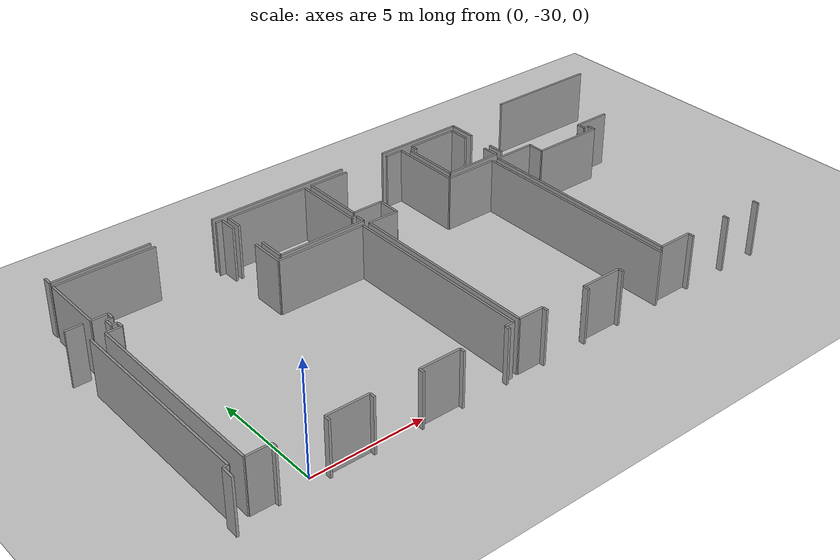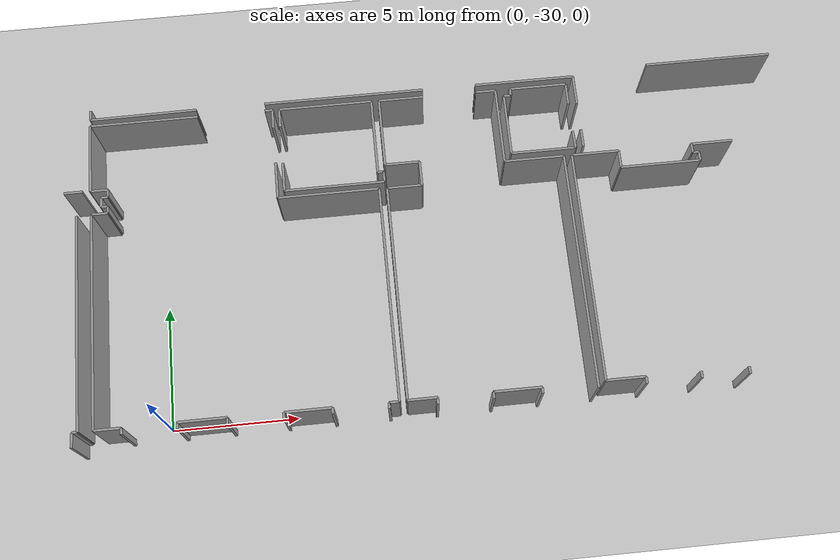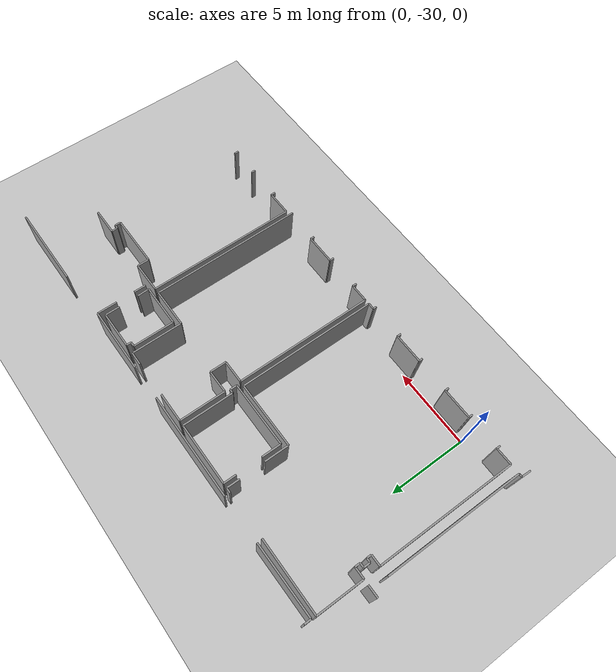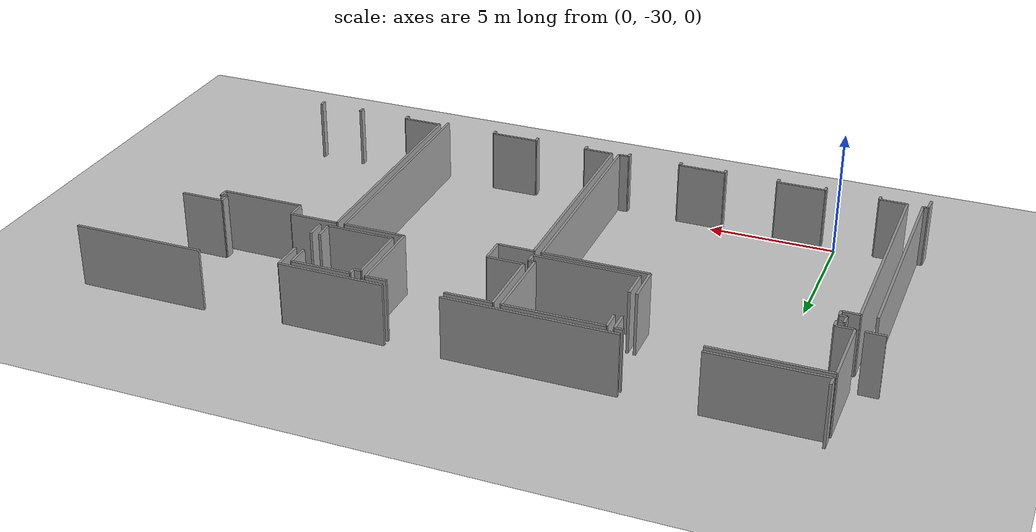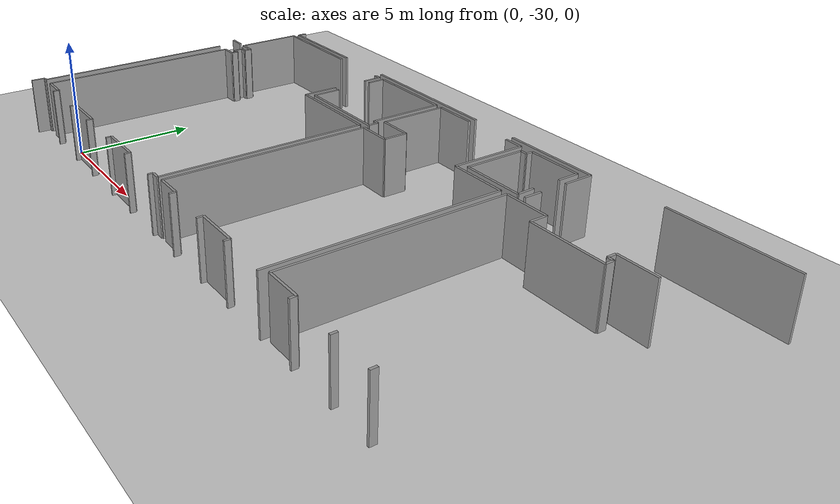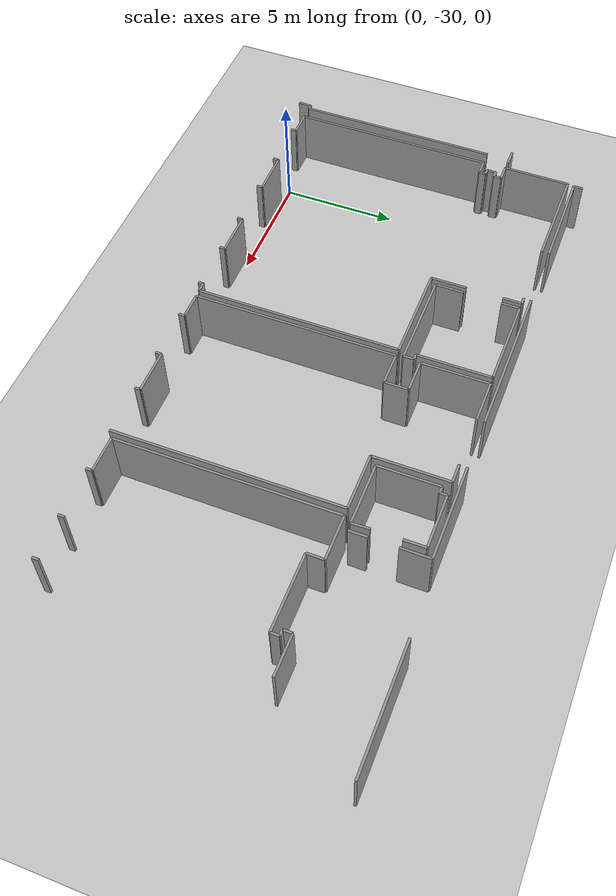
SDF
<sdf version="1.6">
 <world name="default">
  <model name="ground_plane">
   <static>1</static>
   <link name="link">
    <collision name="collision">
     <geometry><plane><normal>0 0 1</normal><size>100 100</size></plane></geometry>
     <surface><friction><ode><mu>100</mu><mu2>50</mu2></ode></friction></surface>
    </collision>
    <visual name="visual">
     <cast_shadows>0</cast_shadows>
     <geometry><plane><normal>0 0 1</normal><size>100 100</size></plane></geometry>
     <material>
      <script><uri>file://media/materials/scripts/gazebo.material</uri><name>Gazebo/Grey</name></script>
     </material>
    </visual>
   </link>
  </model>
  <model name="0510032260_A_40_1_102">
   <static>1</static>
   <link name="Wall_218">
    <collision name="Wall_218_Collision">
     <geometry><box><size>0.739194171738 0.1 2.5</size></box></geometry>
     <pose>0.369597085869 0 1.25 0 0 0</pose>
    </collision>
    <visual name="Wall_218_Visual">
     <pose>0.369597085869 0 1.25 0 0 0</pose>
     <geometry><box><size>0.739194171738 0.1 2.5</size></box></geometry>
     <material>
      <script><uri>file://media/materials/scripts/gazebo.material</uri><name>Gazebo/Grey</name></script>
      <ambient>1 1 1 1</ambient>
     </material>
    </visual>
    <pose>47.396257068 -51.239457535 0 0 0 3.14159265359</pose>
   </link>
   <link name="Wall_221">
    <collision name="Wall_221_Collision">
     <geometry><box><size>8.73287345234 0.1 2.5</size></box></geometry>
     <pose>4.36643672617 0 1.25 0 0 0</pose>
    </collision>
    <visual name="Wall_221_Visual">
     <pose>4.36643672617 0 1.25 0 0 0</pose>
     <geometry><box><size>8.73287345234 0.1 2.5</size></box></geometry>
     <material>
      <script><uri>file://media/materials/scripts/gazebo.material</uri><name>Gazebo/Grey</name></script>
      <ambient>1 1 1 1</ambient>
     </material>
    </visual>
    <pose>47.146474422 -52.2663840535 0 0 0 -1.57079632679</pose>
   </link>
   <link name="Wall_222">
    <collision name="Wall_222_Collision">
     <geometry><box><size>0.201044568687 0.1 2.5</size></box></geometry>
     <pose>0.100522284344 0 1.25 0 0 0</pose>
    </collision>
    <visual name="Wall_222_Visual">
     <pose>0.100522284344 0 1.25 0 0 0</pose>
     <geometry><box><size>0.201044568687 0.1 2.5</size></box></geometry>
     <material>
      <script><uri>file://media/materials/scripts/gazebo.material</uri><name>Gazebo/Grey</name></script>
      <ambient>1 1 1 1</ambient>
     </material>
    </visual>
    <pose>47.146474422 -60.9992575059 0 0 0 3.14159265359</pose>
   </link>
   <link name="Wall_223">
    <collision name="Wall_223_Collision">
     <geometry><box><size>0.584757127194 0.1 2.5</size></box></geometry>
     <pose>0.292378563597 0 1.25 0 0 0</pose>
    </collision>
    <visual name="Wall_223_Visual">
     <pose>0.292378563597 0 1.25 0 0 0</pose>
     <geometry><box><size>0.584757127194 0.1 2.5</size></box></geometry>
     <material>
      <script><uri>file://media/materials/scripts/gazebo.material</uri><name>Gazebo/Grey</name></script>
      <ambient>1 1 1 1</ambient>
     </material>
    </visual>
    <pose>46.9454298533 -60.9992575059 0 0 0 -1.61356839967</pose>
   </link>
   <link name="Wall_264">
    <collision name="Wall_264_Collision">
     <geometry><box><size>0.406150643812 0.1 2.5</size></box></geometry>
     <pose>0.203075321906 0 1.25 0 0 0</pose>
    </collision>
    <visual name="Wall_264_Visual">
     <pose>0.203075321906 0 1.25 0 0 0</pose>
     <geometry><box><size>0.406150643812 0.1 2.5</size></box></geometry>
     <material>
      <script><uri>file://media/materials/scripts/gazebo.material</uri><name>Gazebo/Grey</name></script>
      <ambient>1 1 1 1</ambient>
     </material>
    </visual>
    <pose>47.7579849851 -48.0825247339 0 0 0 1.57079632679</pose>
   </link>
   <link name="Wall_269">
    <collision name="Wall_269_Collision">
     <geometry><box><size>5.19771286419 0.1 2.5</size></box></geometry>
     <pose>2.59885643209 0 1.25 0 0 0</pose>
    </collision>
    <visual name="Wall_269_Visual">
     <pose>2.59885643209 0 1.25 0 0 0</pose>
     <geometry><box><size>5.19771286419 0.1 2.5</size></box></geometry>
     <material>
      <script><uri>file://media/materials/scripts/gazebo.material</uri><name>Gazebo/Grey</name></script>
      <ambient>1 1 1 1</ambient>
     </material>
    </visual>
    <pose>70.8937217995 -47.806088452 0 0 0 0.0</pose>
   </link>
   <link name="Wall_279">
    <collision name="Wall_279_Collision">
     <geometry><box><size>0.754044054653 0.1 2.5</size></box></geometry>
     <pose>0.377022027326 0 1.25 0 0 0</pose>
    </collision>
    <visual name="Wall_279_Visual">
     <pose>0.377022027326 0 1.25 0 0 0</pose>
     <geometry><box><size>0.754044054653 0.1 2.5</size></box></geometry>
     <material>
      <script><uri>file://media/materials/scripts/gazebo.material</uri><name>Gazebo/Grey</name></script>
      <ambient>1 1 1 1</ambient>
     </material>
    </visual>
    <pose>67.761158037 -51.2352691065 0 0 0 1.57079632679</pose>
   </link>
   <link name="Wall_280">
    <collision name="Wall_280_Collision">
     <geometry><box><size>1.24764400896 0.1 2.5</size></box></geometry>
     <pose>0.62382200448 0 1.25 0 0 0</pose>
    </collision>
    <visual name="Wall_280_Visual">
     <pose>0.62382200448 0 1.25 0 0 0</pose>
     <geometry><box><size>1.24764400896 0.1 2.5</size></box></geometry>
     <material>
      <script><uri>file://media/materials/scripts/gazebo.material</uri><name>Gazebo/Grey</name></script>
      <ambient>1 1 1 1</ambient>
     </material>
    </visual>
    <pose>67.761158037 -49.2912036655 0 0 0 1.57079632679</pose>
   </link>
   <link name="Wall_281">
    <collision name="Wall_281_Collision">
     <geometry><box><size>4.09793307399 0.1 2.5</size></box></geometry>
     <pose>2.04896653699 0 1.25 0 0 0</pose>
    </collision>
    <visual name="Wall_281_Visual">
     <pose>2.04896653699 0 1.25 0 0 0</pose>
     <geometry><box><size>4.09793307399 0.1 2.5</size></box></geometry>
     <material>
      <script><uri>file://media/materials/scripts/gazebo.material</uri><name>Gazebo/Grey</name></script>
      <ambient>1 1 1 1</ambient>
     </material>
    </visual>
    <pose>67.761158037 -48.0435596565 0 0 0 3.14159265359</pose>
   </link>
   <link name="Wall_282">
    <collision name="Wall_282_Collision">
     <geometry><box><size>6.55933289757 0.1 2.5</size></box></geometry>
     <pose>3.27966644878 0 1.25 0 0 0</pose>
    </collision>
    <visual name="Wall_282_Visual">
     <pose>3.27966644878 0 1.25 0 0 0</pose>
     <geometry><box><size>6.55933289757 0.1 2.5</size></box></geometry>
     <material>
      <script><uri>file://media/materials/scripts/gazebo.material</uri><name>Gazebo/Grey</name></script>
      <ambient>1 1 1 1</ambient>
     </material>
    </visual>
    <pose>61.4745806812 -48.0435596565 0 0 0 3.14159265359</pose>
   </link>
   <link name="Wall_283">
    <collision name="Wall_283_Collision">
     <geometry><box><size>4.33837155014 0.1 2.5</size></box></geometry>
     <pose>2.16918577507 0 1.25 0 0 0</pose>
    </collision>
    <visual name="Wall_283_Visual">
     <pose>2.16918577507 0 1.25 0 0 0</pose>
     <geometry><box><size>4.33837155014 0.1 2.5</size></box></geometry>
     <material>
      <script><uri>file://media/materials/scripts/gazebo.material</uri><name>Gazebo/Grey</name></script>
      <ambient>1 1 1 1</ambient>
     </material>
    </visual>
    <pose>52.0961815493 -48.0435596565 0 0 0 -3.13261103437</pose>
   </link>
   <link name="Wall_284">
    <collision name="Wall_284_Collision">
     <geometry><box><size>0.402342981526 0.1 2.5</size></box></geometry>
     <pose>0.201171490763 0 1.25 0 0 0</pose>
    </collision>
    <visual name="Wall_284_Visual">
     <pose>0.201171490763 0 1.25 0 0 0</pose>
     <geometry><box><size>0.402342981526 0.1 2.5</size></box></geometry>
     <material>
      <script><uri>file://media/materials/scripts/gazebo.material</uri><name>Gazebo/Grey</name></script>
      <ambient>1 1 1 1</ambient>
     </material>
    </visual>
    <pose>59.3212207365 -61.0260380639 0 0 0 3.14159265359</pose>
   </link>
   <link name="Wall_285">
    <collision name="Wall_285_Collision">
     <geometry><box><size>0.222748243716 0.1 2.5</size></box></geometry>
     <pose>0.111374121858 0 1.25 0 0 0</pose>
    </collision>
    <visual name="Wall_285_Visual">
     <pose>0.111374121858 0 1.25 0 0 0</pose>
     <geometry><box><size>0.222748243716 0.1 2.5</size></box></geometry>
     <material>
      <script><uri>file://media/materials/scripts/gazebo.material</uri><name>Gazebo/Grey</name></script>
      <ambient>1 1 1 1</ambient>
     </material>
    </visual>
    <pose>58.918877755 -61.0260380639 0 0 0 -1.57079632679</pose>
   </link>
   <link name="Wall_286">
    <collision name="Wall_286_Collision">
     <geometry><box><size>0.238994269468 0.1 2.5</size></box></geometry>
     <pose>0.119497134734 0 1.25 0 0 0</pose>
    </collision>
    <visual name="Wall_286_Visual">
     <pose>0.119497134734 0 1.25 0 0 0</pose>
     <geometry><box><size>0.238994269468 0.1 2.5</size></box></geometry>
     <material>
      <script><uri>file://media/materials/scripts/gazebo.material</uri><name>Gazebo/Grey</name></script>
      <ambient>1 1 1 1</ambient>
     </material>
    </visual>
    <pose>56.7751638881 -61.2487863076 0 0 0 1.57079632679</pose>
   </link>
   <link name="Wall_287">
    <collision name="Wall_287_Collision">
     <geometry><box><size>1.85052387087 0.1 2.5</size></box></geometry>
     <pose>0.925261935435 0 1.25 0 0 0</pose>
    </collision>
    <visual name="Wall_287_Visual">
     <pose>0.925261935435 0 1.25 0 0 0</pose>
     <geometry><box><size>1.85052387087 0.1 2.5</size></box></geometry>
     <material>
      <script><uri>file://media/materials/scripts/gazebo.material</uri><name>Gazebo/Grey</name></script>
      <ambient>1 1 1 1</ambient>
     </material>
    </visual>
    <pose>56.7751638881 -61.0097920382 0 0 0 3.14159265359</pose>
   </link>
   <link name="Wall_288">
    <collision name="Wall_288_Collision">
     <geometry><box><size>0.23226739943 0.1 2.5</size></box></geometry>
     <pose>0.116133699715 0 1.25 0 0 0</pose>
    </collision>
    <visual name="Wall_288_Visual">
     <pose>0.116133699715 0 1.25 0 0 0</pose>
     <geometry><box><size>0.23226739943 0.1 2.5</size></box></geometry>
     <material>
      <script><uri>file://media/materials/scripts/gazebo.material</uri><name>Gazebo/Grey</name></script>
      <ambient>1 1 1 1</ambient>
     </material>
    </visual>
    <pose>54.9246400173 -61.0097920382 0 0 0 -1.57079632679</pose>
   </link>
   <link name="Wall_289">
    <collision name="Wall_289_Collision">
     <geometry><box><size>0.246736516116 0.1 2.5</size></box></geometry>
     <pose>0.123368258058 0 1.25 0 0 0</pose>
    </collision>
    <visual name="Wall_289_Visual">
     <pose>0.123368258058 0 1.25 0 0 0</pose>
     <geometry><box><size>0.246736516116 0.1 2.5</size></box></geometry>
     <material>
      <script><uri>file://media/materials/scripts/gazebo.material</uri><name>Gazebo/Grey</name></script>
      <ambient>1 1 1 1</ambient>
     </material>
    </visual>
    <pose>52.7838453581 -61.2420594376 0 0 0 1.57079632679</pose>
   </link>
   <link name="Wall_290">
    <collision name="Wall_290_Collision">
     <geometry><box><size>1.87946210424 0.1 2.5</size></box></geometry>
     <pose>0.939731052121 0 1.25 0 0 0</pose>
    </collision>
    <visual name="Wall_290_Visual">
     <pose>0.939731052121 0 1.25 0 0 0</pose>
     <geometry><box><size>1.87946210424 0.1 2.5</size></box></geometry>
     <material>
      <script><uri>file://media/materials/scripts/gazebo.material</uri><name>Gazebo/Grey</name></script>
      <ambient>1 1 1 1</ambient>
     </material>
    </visual>
    <pose>52.7838453581 -60.9953229215 0 0 0 3.14159265359</pose>
   </link>
   <link name="Wall_291">
    <collision name="Wall_291_Collision">
     <geometry><box><size>0.246736516116 0.1 2.5</size></box></geometry>
     <pose>0.123368258058 0 1.25 0 0 0</pose>
    </collision>
    <visual name="Wall_291_Visual">
     <pose>0.123368258058 0 1.25 0 0 0</pose>
     <geometry><box><size>0.246736516116 0.1 2.5</size></box></geometry>
     <material>
      <script><uri>file://media/materials/scripts/gazebo.material</uri><name>Gazebo/Grey</name></script>
      <ambient>1 1 1 1</ambient>
     </material>
    </visual>
    <pose>50.9043832539 -60.9953229215 0 0 0 -1.57079632679</pose>
   </link>
   <link name="Wall_292">
    <collision name="Wall_292_Collision">
     <geometry><box><size>0.239501957773 0.1 2.5</size></box></geometry>
     <pose>0.119750978887 0 1.25 0 0 0</pose>
    </collision>
    <visual name="Wall_292_Visual">
     <pose>0.119750978887 0 1.25 0 0 0</pose>
     <geometry><box><size>0.239501957773 0.1 2.5</size></box></geometry>
     <material>
      <script><uri>file://media/materials/scripts/gazebo.material</uri><name>Gazebo/Grey</name></script>
      <ambient>1 1 1 1</ambient>
     </material>
    </visual>
    <pose>48.7926537502 -61.2420594376 0 0 0 1.57079632679</pose>
   </link>
   <link name="Wall_293">
    <collision name="Wall_293_Collision">
     <geometry><box><size>1.0523109337 0.1 2.5</size></box></geometry>
     <pose>0.526155466851 0 1.25 0 0 0</pose>
    </collision>
    <visual name="Wall_293_Visual">
     <pose>0.526155466851 0 1.25 0 0 0</pose>
     <geometry><box><size>1.0523109337 0.1 2.5</size></box></geometry>
     <material>
      <script><uri>file://media/materials/scripts/gazebo.material</uri><name>Gazebo/Grey</name></script>
      <ambient>1 1 1 1</ambient>
     </material>
    </visual>
    <pose>48.7926537502 -61.0025574798 0 0 0 3.14159265359</pose>
   </link>
   <link name="Wall_294">
    <collision name="Wall_294_Collision">
     <geometry><box><size>8.74442336128 0.1 2.5</size></box></geometry>
     <pose>4.37221168064 0 1.25 0 0 0</pose>
    </collision>
    <visual name="Wall_294_Visual">
     <pose>4.37221168064 0 1.25 0 0 0</pose>
     <geometry><box><size>8.74442336128 0.1 2.5</size></box></geometry>
     <material>
      <script><uri>file://media/materials/scripts/gazebo.material</uri><name>Gazebo/Grey</name></script>
      <ambient>1 1 1 1</ambient>
     </material>
    </visual>
    <pose>47.7403428165 -61.0025574798 0 0 0 1.57079632679</pose>
   </link>
   <link name="Wall_295">
    <collision name="Wall_295_Collision">
     <geometry><box><size>0.660375562423 0.1 2.5</size></box></geometry>
     <pose>0.330187781212 0 1.25 0 0 0</pose>
    </collision>
    <visual name="Wall_295_Visual">
     <pose>0.330187781212 0 1.25 0 0 0</pose>
     <geometry><box><size>0.660375562423 0.1 2.5</size></box></geometry>
     <material>
      <script><uri>file://media/materials/scripts/gazebo.material</uri><name>Gazebo/Grey</name></script>
      <ambient>1 1 1 1</ambient>
     </material>
    </visual>
    <pose>47.7403428165 -52.2581341186 0 0 0 0.0</pose>
   </link>
   <link name="Wall_296">
    <collision name="Wall_296_Collision">
     <geometry><box><size>0.283036229907 0.1 2.5</size></box></geometry>
     <pose>0.141518114953 0 1.25 0 0 0</pose>
    </collision>
    <visual name="Wall_296_Visual">
     <pose>0.141518114953 0 1.25 0 0 0</pose>
     <geometry><box><size>0.283036229907 0.1 2.5</size></box></geometry>
     <material>
      <script><uri>file://media/materials/scripts/gazebo.material</uri><name>Gazebo/Grey</name></script>
      <ambient>1 1 1 1</ambient>
     </material>
    </visual>
    <pose>48.400718379 -52.2581341186 0 0 0 1.57079632679</pose>
   </link>
   <link name="Wall_297">
    <collision name="Wall_297_Collision">
     <geometry><box><size>0.253971074459 0.1 2.5</size></box></geometry>
     <pose>0.126985537229 0 1.25 0 0 0</pose>
    </collision>
    <visual name="Wall_297_Visual">
     <pose>0.126985537229 0 1.25 0 0 0</pose>
     <geometry><box><size>0.253971074459 0.1 2.5</size></box></geometry>
     <material>
      <script><uri>file://media/materials/scripts/gazebo.material</uri><name>Gazebo/Grey</name></script>
      <ambient>1 1 1 1</ambient>
     </material>
    </visual>
    <pose>48.400718379 -51.9750978887 0 0 0 3.14159265359</pose>
   </link>
   <link name="Wall_298">
    <collision name="Wall_298_Collision">
     <geometry><box><size>0.406404487965 0.1 2.5</size></box></geometry>
     <pose>0.203202243982 0 1.25 0 0 0</pose>
    </collision>
    <visual name="Wall_298_Visual">
     <pose>0.203202243982 0 1.25 0 0 0</pose>
     <geometry><box><size>0.406404487965 0.1 2.5</size></box></geometry>
     <material>
      <script><uri>file://media/materials/scripts/gazebo.material</uri><name>Gazebo/Grey</name></script>
      <ambient>1 1 1 1</ambient>
     </material>
    </visual>
    <pose>48.1467473045 -51.9750978887 0 0 0 1.57079632679</pose>
   </link>
   <link name="Wall_299">
    <collision name="Wall_299_Collision">
     <geometry><box><size>0.268567113221 0.1 2.5</size></box></geometry>
     <pose>0.13428355661 0 1.25 0 0 0</pose>
    </collision>
    <visual name="Wall_299_Visual">
     <pose>0.13428355661 0 1.25 0 0 0</pose>
     <geometry><box><size>0.268567113221 0.1 2.5</size></box></geometry>
     <material>
      <script><uri>file://media/materials/scripts/gazebo.material</uri><name>Gazebo/Grey</name></script>
      <ambient>1 1 1 1</ambient>
     </material>
    </visual>
    <pose>48.1467473045 -51.5686934007 0 0 0 0.0</pose>
   </link>
   <link name="Wall_300">
    <collision name="Wall_300_Collision">
     <geometry><box><size>0.319335943697 0.1 2.5</size></box></geometry>
     <pose>0.159667971849 0 1.25 0 0 0</pose>
    </collision>
    <visual name="Wall_300_Visual">
     <pose>0.159667971849 0 1.25 0 0 0</pose>
     <geometry><box><size>0.319335943697 0.1 2.5</size></box></geometry>
     <material>
      <script><uri>file://media/materials/scripts/gazebo.material</uri><name>Gazebo/Grey</name></script>
      <ambient>1 1 1 1</ambient>
     </material>
    </visual>
    <pose>48.4153144177 -51.5686934007 0 0 0 1.57079632679</pose>
   </link>
   <link name="Wall_301">
    <collision name="Wall_301_Collision">
     <geometry><box><size>0.696675276214 0.1 2.5</size></box></geometry>
     <pose>0.348337638107 0 1.25 0 0 0</pose>
    </collision>
    <visual name="Wall_301_Visual">
     <pose>0.348337638107 0 1.25 0 0 0</pose>
     <geometry><box><size>0.696675276214 0.1 2.5</size></box></geometry>
     <material>
      <script><uri>file://media/materials/scripts/gazebo.material</uri><name>Gazebo/Grey</name></script>
      <ambient>1 1 1 1</ambient>
     </material>
    </visual>
    <pose>48.4153144177 -51.249357457 0 0 0 3.14159265359</pose>
   </link>
   <link name="Wall_302">
    <collision name="Wall_302_Collision">
     <geometry><box><size>2.88912722034 0.1 2.5</size></box></geometry>
     <pose>1.44456361017 0 1.25 0 0 0</pose>
    </collision>
    <visual name="Wall_302_Visual">
     <pose>1.44456361017 0 1.25 0 0 0</pose>
     <geometry><box><size>2.88912722034 0.1 2.5</size></box></geometry>
     <material>
      <script><uri>file://media/materials/scripts/gazebo.material</uri><name>Gazebo/Grey</name></script>
      <ambient>1 1 1 1</ambient>
     </material>
    </visual>
    <pose>47.7186391415 -51.249357457 0 0 0 1.57079632679</pose>
   </link>
   <link name="Wall_303">
    <collision name="Wall_303_Collision">
     <geometry><box><size>4.40483065422 0.1 2.5</size></box></geometry>
     <pose>2.20241532711 0 1.25 0 0 0</pose>
    </collision>
    <visual name="Wall_303_Visual">
     <pose>2.20241532711 0 1.25 0 0 0</pose>
     <geometry><box><size>4.40483065422 0.1 2.5</size></box></geometry>
     <material>
      <script><uri>file://media/materials/scripts/gazebo.material</uri><name>Gazebo/Grey</name></script>
      <ambient>1 1 1 1</ambient>
     </material>
    </visual>
    <pose>47.7186391415 -48.3602302366 0 0 0 0.0</pose>
   </link>
   <link name="Wall_304">
    <collision name="Wall_304_Collision">
     <geometry><box><size>0.30892833345 0.1 2.5</size></box></geometry>
     <pose>0.154464166725 0 1.25 0 0 0</pose>
    </collision>
    <visual name="Wall_304_Visual">
     <pose>0.154464166725 0 1.25 0 0 0</pose>
     <geometry><box><size>0.30892833345 0.1 2.5</size></box></geometry>
     <material>
      <script><uri>file://media/materials/scripts/gazebo.material</uri><name>Gazebo/Grey</name></script>
      <ambient>1 1 1 1</ambient>
     </material>
    </visual>
    <pose>54.9015401994 -48.3602302366 0 0 0 0.0</pose>
   </link>
   <link name="Wall_305">
    <collision name="Wall_305_Collision">
     <geometry><box><size>0.803289820215 0.1 2.5</size></box></geometry>
     <pose>0.401644910107 0 1.25 0 0 0</pose>
    </collision>
    <visual name="Wall_305_Visual">
     <pose>0.401644910107 0 1.25 0 0 0</pose>
     <geometry><box><size>0.803289820215 0.1 2.5</size></box></geometry>
     <material>
      <script><uri>file://media/materials/scripts/gazebo.material</uri><name>Gazebo/Grey</name></script>
      <ambient>1 1 1 1</ambient>
     </material>
    </visual>
    <pose>55.2104685328 -48.3602302366 0 0 0 -1.57079632679</pose>
   </link>
   <link name="Wall_306">
    <collision name="Wall_306_Collision">
     <geometry><box><size>1.53258407001 0.1 2.5</size></box></geometry>
     <pose>0.766292035005 0 1.25 0 0 0</pose>
    </collision>
    <visual name="Wall_306_Visual">
     <pose>0.766292035005 0 1.25 0 0 0</pose>
     <geometry><box><size>1.53258407001 0.1 2.5</size></box></geometry>
     <material>
      <script><uri>file://media/materials/scripts/gazebo.material</uri><name>Gazebo/Grey</name></script>
      <ambient>1 1 1 1</ambient>
     </material>
    </visual>
    <pose>55.2104685328 -50.7358307367 0 0 0 -1.57079632679</pose>
   </link>
   <link name="Wall_307">
    <collision name="Wall_307_Collision">
     <geometry><box><size>4.09615616492 0.1 2.5</size></box></geometry>
     <pose>2.04807808246 0 1.25 0 0 0</pose>
    </collision>
    <visual name="Wall_307_Visual">
     <pose>2.04807808246 0 1.25 0 0 0</pose>
     <geometry><box><size>4.09615616492 0.1 2.5</size></box></geometry>
     <material>
      <script><uri>file://media/materials/scripts/gazebo.material</uri><name>Gazebo/Grey</name></script>
      <ambient>1 1 1 1</ambient>
     </material>
    </visual>
    <pose>55.2104685328 -52.2684148067 0 0 0 0.0</pose>
   </link>
   <link name="Wall_308">
    <collision name="Wall_308_Collision">
     <geometry><box><size>8.75763542056 0.1 2.5</size></box></geometry>
     <pose>4.37881771028 0 1.25 0 0 0</pose>
    </collision>
    <visual name="Wall_308_Visual">
     <pose>4.37881771028 0 1.25 0 0 0</pose>
     <geometry><box><size>8.75763542056 0.1 2.5</size></box></geometry>
     <material>
      <script><uri>file://media/materials/scripts/gazebo.material</uri><name>Gazebo/Grey</name></script>
      <ambient>1 1 1 1</ambient>
     </material>
    </visual>
    <pose>59.3066246978 -52.2684148067 0 0 0 -1.56912966167</pose>
   </link>
   <link name="Wall_309">
    <collision name="Wall_309_Collision">
     <geometry><box><size>4.04995652919 0.1 2.5</size></box></geometry>
     <pose>2.02497826459 0 1.25 0 0 0</pose>
    </collision>
    <visual name="Wall_309_Visual">
     <pose>2.02497826459 0 1.25 0 0 0</pose>
     <geometry><box><size>4.04995652919 0.1 2.5</size></box></geometry>
     <material>
      <script><uri>file://media/materials/scripts/gazebo.material</uri><name>Gazebo/Grey</name></script>
      <ambient>1 1 1 1</ambient>
     </material>
    </visual>
    <pose>59.5459997335 -51.9880439404 0 0 0 3.14159265359</pose>
   </link>
   <link name="Wall_310">
    <collision name="Wall_310_Collision">
     <geometry><box><size>1.21883269767 0.1 2.5</size></box></geometry>
     <pose>0.609416348833 0 1.25 0 0 0</pose>
    </collision>
    <visual name="Wall_310_Visual">
     <pose>0.609416348833 0 1.25 0 0 0</pose>
     <geometry><box><size>1.21883269767 0.1 2.5</size></box></geometry>
     <material>
      <script><uri>file://media/materials/scripts/gazebo.material</uri><name>Gazebo/Grey</name></script>
      <ambient>1 1 1 1</ambient>
     </material>
    </visual>
    <pose>55.4960432043 -51.9880439404 0 0 0 1.57079632679</pose>
   </link>
   <link name="Wall_311">
    <collision name="Wall_311_Collision">
     <geometry><box><size>0.786916872386 0.1 2.5</size></box></geometry>
     <pose>0.393458436193 0 1.25 0 0 0</pose>
    </collision>
    <visual name="Wall_311_Visual">
     <pose>0.393458436193 0 1.25 0 0 0</pose>
     <geometry><box><size>0.786916872386 0.1 2.5</size></box></geometry>
     <material>
      <script><uri>file://media/materials/scripts/gazebo.material</uri><name>Gazebo/Grey</name></script>
      <ambient>1 1 1 1</ambient>
     </material>
    </visual>
    <pose>55.4960432043 -49.1486701739 0 0 0 1.57079632679</pose>
   </link>
   <link name="Wall_312">
    <collision name="Wall_312_Collision">
     <geometry><box><size>3.81185071425 0.1 2.5</size></box></geometry>
     <pose>1.90592535713 0 1.25 0 0 0</pose>
    </collision>
    <visual name="Wall_312_Visual">
     <pose>1.90592535713 0 1.25 0 0 0</pose>
     <geometry><box><size>3.81185071425 0.1 2.5</size></box></geometry>
     <material>
      <script><uri>file://media/materials/scripts/gazebo.material</uri><name>Gazebo/Grey</name></script>
      <ambient>1 1 1 1</ambient>
     </material>
    </visual>
    <pose>55.4960432043 -48.3617533016 0 0 0 0.0</pose>
   </link>
   <link name="Wall_313">
    <collision name="Wall_313_Collision">
     <geometry><box><size>3.19247098244 0.1 2.5</size></box></geometry>
     <pose>1.59623549122 0 1.25 0 0 0</pose>
    </collision>
    <visual name="Wall_313_Visual">
     <pose>1.59623549122 0 1.25 0 0 0</pose>
     <geometry><box><size>3.19247098244 0.1 2.5</size></box></geometry>
     <material>
      <script><uri>file://media/materials/scripts/gazebo.material</uri><name>Gazebo/Grey</name></script>
      <ambient>1 1 1 1</ambient>
     </material>
    </visual>
    <pose>59.3078939185 -48.3617533016 0 0 0 -1.57079632679</pose>
   </link>
   <link name="Wall_314">
    <collision name="Wall_314_Collision">
     <geometry><box><size>0.239375035697 0.1 2.5</size></box></geometry>
     <pose>0.119687517848 0 1.25 0 0 0</pose>
    </collision>
    <visual name="Wall_314_Visual">
     <pose>0.119687517848 0 1.25 0 0 0</pose>
     <geometry><box><size>0.239375035697 0.1 2.5</size></box></geometry>
     <material>
      <script><uri>file://media/materials/scripts/gazebo.material</uri><name>Gazebo/Grey</name></script>
      <ambient>1 1 1 1</ambient>
     </material>
    </visual>
    <pose>59.3078939185 -51.554224284 0 0 0 0.0</pose>
   </link>
   <link name="Wall_315">
    <collision name="Wall_315_Collision">
     <geometry><box><size>0.43382151309 0.1 2.5</size></box></geometry>
     <pose>0.216910756545 0 1.25 0 0 0</pose>
    </collision>
    <visual name="Wall_315_Visual">
     <pose>0.216910756545 0 1.25 0 0 0</pose>
     <geometry><box><size>0.43382151309 0.1 2.5</size></box></geometry>
     <material>
      <script><uri>file://media/materials/scripts/gazebo.material</uri><name>Gazebo/Grey</name></script>
      <ambient>1 1 1 1</ambient>
     </material>
    </visual>
    <pose>59.5472689542 -51.554224284 0 0 0 -1.57372200598</pose>
   </link>
   <link name="Wall_427">
    <collision name="Wall_427_Collision">
     <geometry><box><size>0.23594813964 0.1 2.5</size></box></geometry>
     <pose>0.11797406982 0 1.25 0 0 0</pose>
    </collision>
    <visual name="Wall_427_Visual">
     <pose>0.11797406982 0 1.25 0 0 0</pose>
     <geometry><box><size>0.23594813964 0.1 2.5</size></box></geometry>
     <material>
      <script><uri>file://media/materials/scripts/gazebo.material</uri><name>Gazebo/Grey</name></script>
      <ambient>1 1 1 1</ambient>
     </material>
    </visual>
    <pose>64.7782354024 -61.2391402299 0 0 0 1.57079632679</pose>
   </link>
   <link name="Wall_428">
    <collision name="Wall_428_Collision">
     <geometry><box><size>1.86816603946 0.1 2.5</size></box></geometry>
     <pose>0.93408301973 0 1.25 0 0 0</pose>
    </collision>
    <visual name="Wall_428_Visual">
     <pose>0.93408301973 0 1.25 0 0 0</pose>
     <geometry><box><size>1.86816603946 0.1 2.5</size></box></geometry>
     <material>
      <script><uri>file://media/materials/scripts/gazebo.material</uri><name>Gazebo/Grey</name></script>
      <ambient>1 1 1 1</ambient>
     </material>
    </visual>
    <pose>64.7782354024 -61.0031920902 0 0 0 3.14159265359</pose>
   </link>
   <link name="Wall_429">
    <collision name="Wall_429_Collision">
     <geometry><box><size>0.263109463945 0.1 2.5</size></box></geometry>
     <pose>0.131554731972 0 1.25 0 0 0</pose>
    </collision>
    <visual name="Wall_429_Visual">
     <pose>0.131554731972 0 1.25 0 0 0</pose>
     <geometry><box><size>0.263109463945 0.1 2.5</size></box></geometry>
     <material>
      <script><uri>file://media/materials/scripts/gazebo.material</uri><name>Gazebo/Grey</name></script>
      <ambient>1 1 1 1</ambient>
     </material>
    </visual>
    <pose>62.9100693629 -61.0031920902 0 0 0 -1.57079632679</pose>
   </link>
   <link name="Wall_430">
    <collision name="Wall_430_Collision">
     <geometry><box><size>0.258032580897 0.1 2.5</size></box></geometry>
     <pose>0.129016290448 0 1.25 0 0 0</pose>
    </collision>
    <visual name="Wall_430_Visual">
     <pose>0.129016290448 0 1.25 0 0 0</pose>
     <geometry><box><size>0.258032580897 0.1 2.5</size></box></geometry>
     <material>
      <script><uri>file://media/materials/scripts/gazebo.material</uri><name>Gazebo/Grey</name></script>
      <ambient>1 1 1 1</ambient>
     </material>
    </visual>
    <pose>60.7701631583 -61.2663015542 0 0 0 1.57079632679</pose>
   </link>
   <link name="Wall_431">
    <collision name="Wall_431_Collision">
     <geometry><box><size>1.14686788046 0.1 2.5</size></box></geometry>
     <pose>0.573433940232 0 1.25 0 0 0</pose>
    </collision>
    <visual name="Wall_431_Visual">
     <pose>0.573433940232 0 1.25 0 0 0</pose>
     <geometry><box><size>1.14686788046 0.1 2.5</size></box></geometry>
     <material>
      <script><uri>file://media/materials/scripts/gazebo.material</uri><name>Gazebo/Grey</name></script>
      <ambient>1 1 1 1</ambient>
     </material>
    </visual>
    <pose>60.7701631583 -61.0082689733 0 0 0 3.14159265359</pose>
   </link>
   <link name="Wall_432">
    <collision name="Wall_432_Collision">
     <geometry><box><size>8.72843117968 0.1 2.5</size></box></geometry>
     <pose>4.36421558984 0 1.25 0 0 0</pose>
    </collision>
    <visual name="Wall_432_Visual">
     <pose>4.36421558984 0 1.25 0 0 0</pose>
     <geometry><box><size>8.72843117968 0.1 2.5</size></box></geometry>
     <material>
      <script><uri>file://media/materials/scripts/gazebo.material</uri><name>Gazebo/Grey</name></script>
      <ambient>1 1 1 1</ambient>
     </material>
    </visual>
    <pose>59.6232952779 -61.0082689733 0 0 0 1.57079632679</pose>
   </link>
   <link name="Wall_433">
    <collision name="Wall_433_Collision">
     <geometry><box><size>1.4116273314 0.1 2.5</size></box></geometry>
     <pose>0.7058136657 0 1.25 0 0 0</pose>
    </collision>
    <visual name="Wall_433_Visual">
     <pose>0.7058136657 0 1.25 0 0 0</pose>
     <geometry><box><size>1.4116273314 0.1 2.5</size></box></geometry>
     <material>
      <script><uri>file://media/materials/scripts/gazebo.material</uri><name>Gazebo/Grey</name></script>
      <ambient>1 1 1 1</ambient>
     </material>
    </visual>
    <pose>59.6232952779 -52.2798377936 0 0 0 0.0</pose>
   </link>
   <link name="Wall_434">
    <collision name="Wall_434_Collision">
     <geometry><box><size>1.02311885618 0.1 2.5</size></box></geometry>
     <pose>0.511559428089 0 1.25 0 0 0</pose>
    </collision>
    <visual name="Wall_434_Visual">
     <pose>0.511559428089 0 1.25 0 0 0</pose>
     <geometry><box><size>1.02311885618 0.1 2.5</size></box></geometry>
     <material>
      <script><uri>file://media/materials/scripts/gazebo.material</uri><name>Gazebo/Grey</name></script>
      <ambient>1 1 1 1</ambient>
     </material>
    </visual>
    <pose>61.0349226093 -52.2798377936 0 0 0 1.57079632679</pose>
   </link>
   <link name="Wall_435">
    <collision name="Wall_435_Collision">
     <geometry><box><size>1.40781966911 0.1 2.5</size></box></geometry>
     <pose>0.703909834557 0 1.25 0 0 0</pose>
    </collision>
    <visual name="Wall_435_Visual">
     <pose>0.703909834557 0 1.25 0 0 0</pose>
     <geometry><box><size>1.40781966911 0.1 2.5</size></box></geometry>
     <material>
      <script><uri>file://media/materials/scripts/gazebo.material</uri><name>Gazebo/Grey</name></script>
      <ambient>1 1 1 1</ambient>
     </material>
    </visual>
    <pose>61.0349226093 -51.2567189374 0 0 0 3.14159265359</pose>
   </link>
   <link name="Wall_436">
    <collision name="Wall_436_Collision">
     <geometry><box><size>2.89065028526 0.1 2.5</size></box></geometry>
     <pose>1.44532514263 0 1.25 0 0 0</pose>
    </collision>
    <visual name="Wall_436_Visual">
     <pose>1.44532514263 0 1.25 0 0 0</pose>
     <geometry><box><size>2.89065028526 0.1 2.5</size></box></geometry>
     <material>
      <script><uri>file://media/materials/scripts/gazebo.material</uri><name>Gazebo/Grey</name></script>
      <ambient>1 1 1 1</ambient>
     </material>
    </visual>
    <pose>59.6271029401 -51.2567189374 0 0 0 1.57079632679</pose>
   </link>
   <link name="Wall_437">
    <collision name="Wall_437_Collision">
     <geometry><box><size>1.83250093605 0.1 2.5</size></box></geometry>
     <pose>0.916250468025 0 1.25 0 0 0</pose>
    </collision>
    <visual name="Wall_437_Visual">
     <pose>0.916250468025 0 1.25 0 0 0</pose>
     <geometry><box><size>1.83250093605 0.1 2.5</size></box></geometry>
     <material>
      <script><uri>file://media/materials/scripts/gazebo.material</uri><name>Gazebo/Grey</name></script>
      <ambient>1 1 1 1</ambient>
     </material>
    </visual>
    <pose>59.6271029401 -48.3660686522 0 0 0 0.0</pose>
   </link>
   <link name="Wall_438">
    <collision name="Wall_438_Collision">
     <geometry><box><size>0.820043534272 0.1 2.5</size></box></geometry>
     <pose>0.410021767136 0 1.25 0 0 0</pose>
    </collision>
    <visual name="Wall_438_Visual">
     <pose>0.410021767136 0 1.25 0 0 0</pose>
     <geometry><box><size>0.820043534272 0.1 2.5</size></box></geometry>
     <material>
      <script><uri>file://media/materials/scripts/gazebo.material</uri><name>Gazebo/Grey</name></script>
      <ambient>1 1 1 1</ambient>
     </material>
    </visual>
    <pose>63.6545942619 -48.3660686522 0 0 0 0.0</pose>
   </link>
   <link name="Wall_439">
    <collision name="Wall_439_Collision">
     <geometry><box><size>3.2092246965 0.1 2.5</size></box></geometry>
     <pose>1.60461234825 0 1.25 0 0 0</pose>
    </collision>
    <visual name="Wall_439_Visual">
     <pose>1.60461234825 0 1.25 0 0 0</pose>
     <geometry><box><size>3.2092246965 0.1 2.5</size></box></geometry>
     <material>
      <script><uri>file://media/materials/scripts/gazebo.material</uri><name>Gazebo/Grey</name></script>
      <ambient>1 1 1 1</ambient>
     </material>
    </visual>
    <pose>64.4746377961 -48.3660686522 0 0 0 -1.57079632679</pose>
   </link>
   <link name="Wall_440">
    <collision name="Wall_440_Collision">
     <geometry><box><size>2.43233466813 0.1 2.5</size></box></geometry>
     <pose>1.21616733407 0 1.25 0 0 0</pose>
    </collision>
    <visual name="Wall_440_Visual">
     <pose>1.21616733407 0 1.25 0 0 0</pose>
     <geometry><box><size>2.43233466813 0.1 2.5</size></box></geometry>
     <material>
      <script><uri>file://media/materials/scripts/gazebo.material</uri><name>Gazebo/Grey</name></script>
      <ambient>1 1 1 1</ambient>
     </material>
    </visual>
    <pose>64.4746377961 -51.5752933486 0 0 0 0.0</pose>
   </link>
   <link name="Wall_441">
    <collision name="Wall_441_Collision">
     <geometry><box><size>9.66387299321 0.1 2.5</size></box></geometry>
     <pose>4.83193649661 0 1.25 0 0 0</pose>
    </collision>
    <visual name="Wall_441_Visual">
     <pose>4.83193649661 0 1.25 0 0 0</pose>
     <geometry><box><size>9.66387299321 0.1 2.5</size></box></geometry>
     <material>
      <script><uri>file://media/materials/scripts/gazebo.material</uri><name>Gazebo/Grey</name></script>
      <ambient>1 1 1 1</ambient>
     </material>
    </visual>
    <pose>66.9069724643 -51.5752933486 0 0 0 -1.56847166589</pose>
   </link>
   <link name="Wall_442">
    <collision name="Wall_442_Collision">
     <geometry><box><size>2.64543683406 0.1 2.5</size></box></geometry>
     <pose>1.32271841703 0 1.25 0 0 0</pose>
    </collision>
    <visual name="Wall_442_Visual">
     <pose>1.32271841703 0 1.25 0 0 0</pose>
     <geometry><box><size>2.64543683406 0.1 2.5</size></box></geometry>
     <material>
      <script><uri>file://media/materials/scripts/gazebo.material</uri><name>Gazebo/Grey</name></script>
      <ambient>1 1 1 1</ambient>
     </material>
    </visual>
    <pose>67.4415682492 -51.2518958985 0 0 0 3.14159265359</pose>
   </link>
   <link name="Wall_443">
    <collision name="Wall_443_Collision">
     <geometry><box><size>2.5945410815 0.1 2.5</size></box></geometry>
     <pose>1.29727054075 0 1.25 0 0 0</pose>
    </collision>
    <visual name="Wall_443_Visual">
     <pose>1.29727054075 0 1.25 0 0 0</pose>
     <geometry><box><size>2.5945410815 0.1 2.5</size></box></geometry>
     <material>
      <script><uri>file://media/materials/scripts/gazebo.material</uri><name>Gazebo/Grey</name></script>
      <ambient>1 1 1 1</ambient>
     </material>
    </visual>
    <pose>64.7961314151 -51.2518958985 0 0 0 1.57079632679</pose>
   </link>
   <link name="Wall_444">
    <collision name="Wall_444_Collision">
     <geometry><box><size>0.291666931088 0.1 2.5</size></box></geometry>
     <pose>0.145833465544 0 1.25 0 0 0</pose>
    </collision>
    <visual name="Wall_444_Visual">
     <pose>0.145833465544 0 1.25 0 0 0</pose>
     <geometry><box><size>0.291666931088 0.1 2.5</size></box></geometry>
     <material>
      <script><uri>file://media/materials/scripts/gazebo.material</uri><name>Gazebo/Grey</name></script>
      <ambient>1 1 1 1</ambient>
     </material>
    </visual>
    <pose>64.7961314151 -48.657354817 0 0 0 0.0</pose>
   </link>
   <link name="Wall_445">
    <collision name="Wall_445_Collision">
     <geometry><box><size>0.295855359602 0.1 2.5</size></box></geometry>
     <pose>0.147927679801 0 1.25 0 0 0</pose>
    </collision>
    <visual name="Wall_445_Visual">
     <pose>0.147927679801 0 1.25 0 0 0</pose>
     <geometry><box><size>0.295855359602 0.1 2.5</size></box></geometry>
     <material>
      <script><uri>file://media/materials/scripts/gazebo.material</uri><name>Gazebo/Grey</name></script>
      <ambient>1 1 1 1</ambient>
     </material>
    </visual>
    <pose>65.0877983462 -48.657354817 0 0 0 1.57079632679</pose>
   </link>
   <link name="Wall_446">
    <collision name="Wall_446_Collision">
     <geometry><box><size>2.32368937091 0.1 2.5</size></box></geometry>
     <pose>1.16184468546 0 1.25 0 0 0</pose>
    </collision>
    <visual name="Wall_446_Visual">
     <pose>1.16184468546 0 1.25 0 0 0</pose>
     <geometry><box><size>2.32368937091 0.1 2.5</size></box></geometry>
     <material>
      <script><uri>file://media/materials/scripts/gazebo.material</uri><name>Gazebo/Grey</name></script>
      <ambient>1 1 1 1</ambient>
     </material>
    </visual>
    <pose>65.0877983462 -48.3614994574 0 0 0 0.0</pose>
   </link>
   <link name="Wall_447">
    <collision name="Wall_447_Collision">
     <geometry><box><size>0.911300507054 0.1 2.5</size></box></geometry>
     <pose>0.455650253527 0 1.25 0 0 0</pose>
    </collision>
    <visual name="Wall_447_Visual">
     <pose>0.455650253527 0 1.25 0 0 0</pose>
     <geometry><box><size>0.911300507054 0.1 2.5</size></box></geometry>
     <material>
      <script><uri>file://media/materials/scripts/gazebo.material</uri><name>Gazebo/Grey</name></script>
      <ambient>1 1 1 1</ambient>
     </material>
    </visual>
    <pose>67.4114877171 -48.3614994574 0 0 0 -1.57079632679</pose>
   </link>
   <link name="Wall_448">
    <collision name="Wall_448_Collision">
     <geometry><box><size>0.743230037567 0.1 2.5</size></box></geometry>
     <pose>0.371615018784 0 1.25 0 0 0</pose>
    </collision>
    <visual name="Wall_448_Visual">
     <pose>0.371615018784 0 1.25 0 0 0</pose>
     <geometry><box><size>0.743230037567 0.1 2.5</size></box></geometry>
     <material>
      <script><uri>file://media/materials/scripts/gazebo.material</uri><name>Gazebo/Grey</name></script>
      <ambient>1 1 1 1</ambient>
     </material>
    </visual>
    <pose>67.4114877171 -50.5092748307 0 0 0 -1.53031256163</pose>
   </link>
   <link name="Wall_451">
    <collision name="Wall_451_Collision">
     <geometry><box><size>0.275420905335 0.1 2.5</size></box></geometry>
     <pose>0.137710452668 0 1.25 0 0 0</pose>
    </collision>
    <visual name="Wall_451_Visual">
     <pose>0.137710452668 0 1.25 0 0 0</pose>
     <geometry><box><size>0.275420905335 0.1 2.5</size></box></geometry>
     <material>
      <script><uri>file://media/materials/scripts/gazebo.material</uri><name>Gazebo/Grey</name></script>
      <ambient>1 1 1 1</ambient>
     </material>
    </visual>
    <pose>72.7741992804 -61.2580516192 0 0 0 1.57079632679</pose>
   </link>
   <link name="Wall_453">
    <collision name="Wall_453_Collision">
     <geometry><box><size>0.267044048307 0.1 2.5</size></box></geometry>
     <pose>0.133522024153 0 1.25 0 0 0</pose>
    </collision>
    <visual name="Wall_453_Visual">
     <pose>0.133522024153 0 1.25 0 0 0</pose>
     <geometry><box><size>0.267044048307 0.1 2.5</size></box></geometry>
     <material>
      <script><uri>file://media/materials/scripts/gazebo.material</uri><name>Gazebo/Grey</name></script>
      <ambient>1 1 1 1</ambient>
     </material>
    </visual>
    <pose>70.9131408772 -60.9826307139 0 0 0 -1.57079632679</pose>
   </link>
   <link name="Wall_454">
    <collision name="Wall_454_Collision">
     <geometry><box><size>0.267044048307 0.1 2.5</size></box></geometry>
     <pose>0.133522024153 0 1.25 0 0 0</pose>
    </collision>
    <visual name="Wall_454_Visual">
     <pose>0.133522024153 0 1.25 0 0 0</pose>
     <geometry><box><size>0.267044048307 0.1 2.5</size></box></geometry>
     <material>
      <script><uri>file://media/materials/scripts/gazebo.material</uri><name>Gazebo/Grey</name></script>
      <ambient>1 1 1 1</ambient>
     </material>
    </visual>
    <pose>68.7851653477 -61.2496747622 0 0 0 1.57079632679</pose>
   </link>
   <link name="Wall_455">
    <collision name="Wall_455_Collision">
     <geometry><box><size>1.55225699182 0.1 2.5</size></box></geometry>
     <pose>0.77612849591 0 1.25 0 0 0</pose>
    </collision>
    <visual name="Wall_455_Visual">
     <pose>0.77612849591 0 1.25 0 0 0</pose>
     <geometry><box><size>1.55225699182 0.1 2.5</size></box></geometry>
     <material>
      <script><uri>file://media/materials/scripts/gazebo.material</uri><name>Gazebo/Grey</name></script>
      <ambient>1 1 1 1</ambient>
     </material>
    </visual>
    <pose>68.7851653477 -60.9826307139 0 0 0 3.14159265359</pose>
   </link>
   <link name="Wall_456">
    <collision name="Wall_456_Collision">
     <geometry><box><size>9.41419115734 0.1 2.5</size></box></geometry>
     <pose>4.70709557867 0 1.25 0 0 0</pose>
    </collision>
    <visual name="Wall_456_Visual">
     <pose>4.70709557867 0 1.25 0 0 0</pose>
     <geometry><box><size>9.41419115734 0.1 2.5</size></box></geometry>
     <material>
      <script><uri>file://media/materials/scripts/gazebo.material</uri><name>Gazebo/Grey</name></script>
      <ambient>1 1 1 1</ambient>
     </material>
    </visual>
    <pose>67.2329083559 -60.9826307139 0 0 0 1.57079632679</pose>
   </link>
   <link name="Wall_457">
    <collision name="Wall_457_Collision">
     <geometry><box><size>1.92134638938 0.1 2.5</size></box></geometry>
     <pose>0.960673194692 0 1.25 0 0 0</pose>
    </collision>
    <visual name="Wall_457_Visual">
     <pose>0.960673194692 0 1.25 0 0 0</pose>
     <geometry><box><size>1.92134638938 0.1 2.5</size></box></geometry>
     <material>
      <script><uri>file://media/materials/scripts/gazebo.material</uri><name>Gazebo/Grey</name></script>
      <ambient>1 1 1 1</ambient>
     </material>
    </visual>
    <pose>67.2329083559 -51.5684395565 0 0 0 0.0</pose>
   </link>
   <link name="Wall_458">
    <collision name="Wall_458_Collision">
     <geometry><box><size>0.731959613395 0.1 2.5</size></box></geometry>
     <pose>0.365979806698 0 1.25 0 0 0</pose>
    </collision>
    <visual name="Wall_458_Visual">
     <pose>0.365979806698 0 1.25 0 0 0</pose>
     <geometry><box><size>0.731959613395 0.1 2.5</size></box></geometry>
     <material>
      <script><uri>file://media/materials/scripts/gazebo.material</uri><name>Gazebo/Grey</name></script>
      <ambient>1 1 1 1</ambient>
     </material>
    </visual>
    <pose>69.1542547453 -51.5684395565 0 0 0 -1.57079632679</pose>
   </link>
   <link name="Wall_459">
    <collision name="Wall_459_Collision">
     <geometry><box><size>3.24983976088 0.1 2.5</size></box></geometry>
     <pose>1.62491988044 0 1.25 0 0 0</pose>
    </collision>
    <visual name="Wall_459_Visual">
     <pose>1.62491988044 0 1.25 0 0 0</pose>
     <geometry><box><size>3.24983976088 0.1 2.5</size></box></geometry>
     <material>
      <script><uri>file://media/materials/scripts/gazebo.material</uri><name>Gazebo/Grey</name></script>
      <ambient>1 1 1 1</ambient>
     </material>
    </visual>
    <pose>69.1542547453 -52.3003991699 0 0 0 0.0</pose>
   </link>
   <link name="Wall_460">
    <collision name="Wall_460_Collision">
     <geometry><box><size>0.359697163926 0.1 2.5</size></box></geometry>
     <pose>0.179848581963 0 1.25 0 0 0</pose>
    </collision>
    <visual name="Wall_460_Visual">
     <pose>0.179848581963 0 1.25 0 0 0</pose>
     <geometry><box><size>0.359697163926 0.1 2.5</size></box></geometry>
     <material>
      <script><uri>file://media/materials/scripts/gazebo.material</uri><name>Gazebo/Grey</name></script>
      <ambient>1 1 1 1</ambient>
     </material>
    </visual>
    <pose>72.4040945062 -52.3003991699 0 0 0 1.57079632679</pose>
   </link>
   <link name="Wall_461">
    <collision name="Wall_461_Collision">
     <geometry><box><size>0.246101905735 0.1 2.5</size></box></geometry>
     <pose>0.123050952867 0 1.25 0 0 0</pose>
    </collision>
    <visual name="Wall_461_Visual">
     <pose>0.123050952867 0 1.25 0 0 0</pose>
     <geometry><box><size>0.246101905735 0.1 2.5</size></box></geometry>
     <material>
      <script><uri>file://media/materials/scripts/gazebo.material</uri><name>Gazebo/Grey</name></script>
      <ambient>1 1 1 1</ambient>
     </material>
    </visual>
    <pose>72.4040945062 -51.940702006 0 0 0 3.14159265359</pose>
   </link>
   <link name="Wall_462">
    <collision name="Wall_462_Collision">
     <geometry><box><size>0.378608553279 0.1 2.5</size></box></geometry>
     <pose>0.189304276639 0 1.25 0 0 0</pose>
    </collision>
    <visual name="Wall_462_Visual">
     <pose>0.189304276639 0 1.25 0 0 0</pose>
     <geometry><box><size>0.378608553279 0.1 2.5</size></box></geometry>
     <material>
      <script><uri>file://media/materials/scripts/gazebo.material</uri><name>Gazebo/Grey</name></script>
      <ambient>1 1 1 1</ambient>
     </material>
    </visual>
    <pose>72.1579926004 -51.940702006 0 0 0 1.57079632679</pose>
   </link>
   <link name="Wall_463">
    <collision name="Wall_463_Collision">
     <geometry><box><size>1.69110974317 0.1 2.5</size></box></geometry>
     <pose>0.845554871587 0 1.25 0 0 0</pose>
    </collision>
    <visual name="Wall_463_Visual">
     <pose>0.845554871587 0 1.25 0 0 0</pose>
     <geometry><box><size>1.69110974317 0.1 2.5</size></box></geometry>
     <material>
      <script><uri>file://media/materials/scripts/gazebo.material</uri><name>Gazebo/Grey</name></script>
      <ambient>1 1 1 1</ambient>
     </material>
    </visual>
    <pose>72.1579926004 -51.5620934527 0 0 0 0.0</pose>
   </link>
   <pose>-50.3 30.7834798226 0 0 0 0</pose>
  </model>
 </world>
</sdf>
